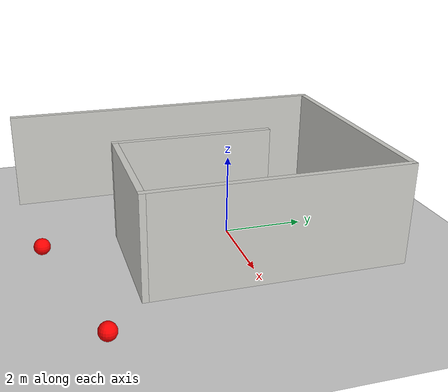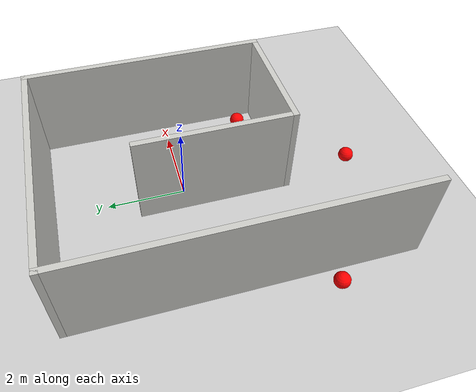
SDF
<sdf version="1.6">
 <world name="default">
  <model name="ground_plane">
   <static>1</static>
   <link name="link">
    <collision name="collision">
     <geometry><plane><normal>0 0 1</normal><size>100 100</size></plane></geometry>
     <surface><friction><ode><mu>100</mu><mu2>50</mu2></ode></friction></surface>
    </collision>
    <visual name="visual">
     <cast_shadows>0</cast_shadows>
     <geometry><plane><normal>0 0 1</normal><size>100 100</size></plane></geometry>
     <material>
      <script><uri>file://media/materials/scripts/gazebo.material</uri><name>Gazebo/Grey</name></script>
     </material>
    </visual>
   </link>
  </model>
  <model name="redball_0">
   <link name="link">
    <pose>0 0 0.2 0 -0 0</pose>
    <inertial>
     <mass>1</mass>
     <inertia><ixx>0.1</ixx><ixy>0</ixy><ixz>0</ixz><iyy>0.1</iyy><iyz>0</iyz><izz>0.1</izz></inertia>
    </inertial>
    <visual name="visual">
     <geometry><sphere><radius>0.2</radius></sphere></geometry>
     <material>
      <script><name>Gazebo/Grey</name><uri>file://media/materials/scripts/gazebo.material</uri></script>
      <ambient>1 0 0 1</ambient>
      <diffuse>1 0 0 1</diffuse>
      <specular>1 0 0 1</specular>
      <emissive>0 0 0 1</emissive>
      <shader type="vertex"><normal_map>__default__</normal_map></shader>
     </material>
    </visual>
    <collision name="collision">
     <geometry><sphere><radius>0.2</radius></sphere></geometry>
     <surface>
      <friction>
       <ode><mu>1</mu><mu2>1</mu2><fdir1>0 0 0</fdir1><slip1>0</slip1><slip2>0</slip2></ode>
       <torsional>
        <coefficient>1</coefficient>
        <patch_radius>0</patch_radius>
        <surface_radius>0</surface_radius>
        <use_patch_radius>1</use_patch_radius>
        <ode><slip>0</slip></ode>
       </torsional>
      </friction>
      <bounce><restitution_coefficient>0</restitution_coefficient><threshold>1e+06</threshold></bounce>
      <contact>
       <collide_without_contact>0</collide_without_contact>
       <collide_without_contact_bitmask>1</collide_without_contact_bitmask>
       <collide_bitmask>1</collide_bitmask>
       <ode>
        <soft_cfm>0</soft_cfm>
        <soft_erp>0.2</soft_erp>
        <kp>1e+13</kp>
        <kd>1</kd>
        <max_vel>0.01</max_vel>
        <min_depth>0</min_depth>
       </ode>
       <bullet>
        <split_impulse>1</split_impulse>
        <split_impulse_penetration_threshold>-0.01</split_impulse_penetration_threshold>
        <soft_cfm>0</soft_cfm>
        <soft_erp>0.2</soft_erp>
        <kp>1e+13</kp>
        <kd>1</kd>
       </bullet>
      </contact>
     </surface>
    </collision>
   </link>
   <static>0</static>
   <pose>-0.044672 -4.61825 7.4e-05 -0.02714 0 0</pose>
  </model>
  <model name="redball_3">
   <link name="link">
    <pose>0 0 0.2 0 -0 0</pose>
    <inertial>
     <mass>1</mass>
     <inertia><ixx>0.1</ixx><ixy>0</ixy><ixz>0</ixz><iyy>0.1</iyy><iyz>0</iyz><izz>0.1</izz></inertia>
    </inertial>
    <visual name="visual">
     <geometry><sphere><radius>0.2</radius></sphere></geometry>
     <material>
      <script><name>Gazebo/Grey</name><uri>file://media/materials/scripts/gazebo.material</uri></script>
      <ambient>1 0 0 1</ambient>
      <diffuse>1 0 0 1</diffuse>
      <specular>1 0 0 1</specular>
      <emissive>0 0 0 1</emissive>
      <shader type="vertex"><normal_map>__default__</normal_map></shader>
     </material>
    </visual>
    <collision name="collision">
     <geometry><sphere><radius>0.2</radius></sphere></geometry>
     <surface>
      <friction>
       <ode><mu>1</mu><mu2>1</mu2><fdir1>0 0 0</fdir1><slip1>0</slip1><slip2>0</slip2></ode>
       <torsional>
        <coefficient>1</coefficient>
        <patch_radius>0</patch_radius>
        <surface_radius>0</surface_radius>
        <use_patch_radius>1</use_patch_radius>
        <ode><slip>0</slip></ode>
       </torsional>
      </friction>
      <bounce><restitution_coefficient>0</restitution_coefficient><threshold>1e+06</threshold></bounce>
      <contact>
       <collide_without_contact>0</collide_without_contact>
       <collide_without_contact_bitmask>1</collide_without_contact_bitmask>
       <collide_bitmask>1</collide_bitmask>
       <ode>
        <soft_cfm>0</soft_cfm>
        <soft_erp>0.2</soft_erp>
        <kp>1e+13</kp>
        <kd>1</kd>
        <max_vel>0.01</max_vel>
        <min_depth>0</min_depth>
       </ode>
       <bullet>
        <split_impulse>1</split_impulse>
        <split_impulse_penetration_threshold>-0.01</split_impulse_penetration_threshold>
        <soft_cfm>0</soft_cfm>
        <soft_erp>0.2</soft_erp>
        <kp>1e+13</kp>
        <kd>1</kd>
       </bullet>
      </contact>
     </surface>
    </collision>
   </link>
   <static>0</static>
   <pose>-1.92733 -1.98789 0 0 -0 0</pose>
  </model>
  <model name="redball_2_clone_5">
   <link name="link">
    <pose>0 0 0.2 0 -0 0</pose>
    <inertial>
     <mass>1</mass>
     <inertia><ixx>0.1</ixx><ixy>0</ixy><ixz>0</ixz><iyy>0.1</iyy><iyz>0</iyz><izz>0.1</izz></inertia>
    </inertial>
    <visual name="visual">
     <geometry><sphere><radius>0.2</radius></sphere></geometry>
     <material>
      <script><name>Gazebo/Grey</name><uri>file://media/materials/scripts/gazebo.material</uri></script>
      <ambient>1 0 0 1</ambient>
      <diffuse>1 0 0 1</diffuse>
      <specular>1 0 0 1</specular>
      <emissive>0 0 0 1</emissive>
      <shader type="vertex"><normal_map>__default__</normal_map></shader>
     </material>
    </visual>
    <collision name="collision">
     <geometry><sphere><radius>0.2</radius></sphere></geometry>
     <surface>
      <friction>
       <ode><mu>1</mu><mu2>1</mu2><fdir1>0 0 0</fdir1><slip1>0</slip1><slip2>0</slip2></ode>
       <torsional>
        <coefficient>1</coefficient>
        <patch_radius>0</patch_radius>
        <surface_radius>0</surface_radius>
        <use_patch_radius>1</use_patch_radius>
        <ode><slip>0</slip></ode>
       </torsional>
      </friction>
      <bounce><restitution_coefficient>0</restitution_coefficient><threshold>1e+06</threshold></bounce>
      <contact>
       <collide_without_contact>0</collide_without_contact>
       <collide_without_contact_bitmask>1</collide_without_contact_bitmask>
       <collide_bitmask>1</collide_bitmask>
       <ode>
        <soft_cfm>0</soft_cfm>
        <soft_erp>0.2</soft_erp>
        <kp>1e+13</kp>
        <kd>1</kd>
        <max_vel>0.01</max_vel>
        <min_depth>0</min_depth>
       </ode>
       <bullet>
        <split_impulse>1</split_impulse>
        <split_impulse_penetration_threshold>-0.01</split_impulse_penetration_threshold>
        <soft_cfm>0</soft_cfm>
        <soft_erp>0.2</soft_erp>
        <kp>1e+13</kp>
        <kd>1</kd>
       </bullet>
      </contact>
     </surface>
    </collision>
   </link>
   <static>0</static>
   <pose>-3.68777 -2.81908 0 0 -0 0</pose>
  </model>
  <model name="Untitled4">
   <pose>-0.277886 -0.769655 0 0 -0 0</pose>
   <link name="Wall_21">
    <collision name="Wall_21_Collision">
     <geometry><box><size>8.5 0.15 2.5</size></box></geometry>
     <pose>0 0 1.25 0 -0 0</pose>
    </collision>
    <visual name="Wall_21_Visual">
     <pose>0 0 1.25 0 -0 0</pose>
     <geometry><box><size>8.5 0.15 2.5</size></box></geometry>
     <material>
      <script><uri>file://media/materials/scripts/gazebo.material</uri><name>Gazebo/CeilingTiled</name></script>
      <ambient>1 1 1 1</ambient>
     </material>
     <meta><layer>0</layer></meta>
    </visual>
    <pose>-2.925 0 0 0 0 -1.5708</pose>
   </link>
   <link name="Wall_23">
    <collision name="Wall_23_Collision">
     <geometry><box><size>6 0.15 2.5</size></box></geometry>
     <pose>0 0 1.25 0 -0 0</pose>
    </collision>
    <visual name="Wall_23_Visual">
     <pose>0 0 1.25 0 -0 0</pose>
     <geometry><box><size>6 0.15 2.5</size></box></geometry>
     <material>
      <script><uri>file://media/materials/scripts/gazebo.material</uri><name>Gazebo/CeilingTiled</name></script>
      <ambient>1 1 1 1</ambient>
     </material>
     <meta><layer>0</layer></meta>
    </visual>
    <pose>0 4.175 0 0 -0 0</pose>
   </link>
   <link name="Wall_24">
    <collision name="Wall_24_Collision">
     <geometry><box><size>6.25 0.15 2.5</size></box></geometry>
     <pose>0 0 1.25 0 -0 0</pose>
    </collision>
    <visual name="Wall_24_Visual">
     <pose>0 0 1.25 0 -0 0</pose>
     <geometry><box><size>6.25 0.15 2.5</size></box></geometry>
     <material>
      <script><uri>file://media/materials/scripts/gazebo.material</uri><name>Gazebo/CeilingTiled</name></script>
      <ambient>1 1 1 1</ambient>
     </material>
     <meta><layer>0</layer></meta>
    </visual>
    <pose>2.925 1.125 0 0 0 -1.5708</pose>
   </link>
   <link name="Wall_29">
    <collision name="Wall_29_Collision">
     <geometry><box><size>3.25 0.15 2.5</size></box></geometry>
     <pose>0 0 1.25 0 -0 0</pose>
    </collision>
    <visual name="Wall_29_Visual">
     <pose>0 0 1.25 0 -0 0</pose>
     <geometry><box><size>3.25 0.15 2.5</size></box></geometry>
     <material>
      <script><uri>file://media/materials/scripts/gazebo.material</uri><name>Gazebo/CeilingTiled</name></script>
      <ambient>1 1 1 1</ambient>
     </material>
     <meta><layer>0</layer></meta>
    </visual>
    <pose>1.375 -1.925 0 0 -0 3.14159</pose>
   </link>
   <link name="Wall_30">
    <collision name="Wall_30_Collision">
     <geometry><box><size>4 0.15 2.5</size></box></geometry>
     <pose>0 0 1.25 0 -0 0</pose>
    </collision>
    <visual name="Wall_30_Visual">
     <pose>0 0 1.25 0 -0 0</pose>
     <geometry><box><size>4 0.15 2.5</size></box></geometry>
     <material>
      <script><uri>file://media/materials/scripts/gazebo.material</uri><name>Gazebo/CeilingTiled</name></script>
      <ambient>1 1 1 1</ambient>
     </material>
     <meta><layer>0</layer></meta>
    </visual>
    <pose>-0.175 0 0 0 -0 1.5708</pose>
   </link>
   <static>1</static>
  </model>
  <model name="redball_0_clone">
   <link name="link">
    <pose>0 0 0.2 0 -0 0</pose>
    <inertial>
     <mass>1</mass>
     <inertia><ixx>0.1</ixx><ixy>0</ixy><ixz>0</ixz><iyy>0.1</iyy><iyz>0</iyz><izz>0.1</izz></inertia>
    </inertial>
    <visual name="visual">
     <geometry><sphere><radius>0.2</radius></sphere></geometry>
     <material>
      <script><name>Gazebo/Grey</name><uri>file://media/materials/scripts/gazebo.material</uri></script>
      <ambient>1 0 0 1</ambient>
      <diffuse>1 0 0 1</diffuse>
      <specular>1 0 0 1</specular>
      <emissive>0 0 0 1</emissive>
      <shader type="vertex"><normal_map>__default__</normal_map></shader>
     </material>
    </visual>
    <collision name="collision">
     <geometry><sphere><radius>0.2</radius></sphere></geometry>
     <surface>
      <friction>
       <ode><mu>1</mu><mu2>1</mu2><fdir1>0 0 0</fdir1><slip1>0</slip1><slip2>0</slip2></ode>
       <torsional>
        <coefficient>1</coefficient>
        <patch_radius>0</patch_radius>
        <surface_radius>0</surface_radius>
        <use_patch_radius>1</use_patch_radius>
        <ode><slip>0</slip></ode>
       </torsional>
      </friction>
      <bounce><restitution_coefficient>0</restitution_coefficient><threshold>1e+06</threshold></bounce>
      <contact>
       <collide_without_contact>0</collide_without_contact>
       <collide_without_contact_bitmask>1</collide_without_contact_bitmask>
       <collide_bitmask>1</collide_bitmask>
       <ode>
        <soft_cfm>0</soft_cfm>
        <soft_erp>0.2</soft_erp>
        <kp>1e+13</kp>
        <kd>1</kd>
        <max_vel>0.01</max_vel>
        <min_depth>0</min_depth>
       </ode>
       <bullet>
        <split_impulse>1</split_impulse>
        <split_impulse_penetration_threshold>-0.01</split_impulse_penetration_threshold>
        <soft_cfm>0</soft_cfm>
        <soft_erp>0.2</soft_erp>
        <kp>1e+13</kp>
        <kd>1</kd>
       </bullet>
      </contact>
     </surface>
    </collision>
   </link>
   <static>0</static>
   <pose>2.14651 -2.12896 7.4e-05 -0.02714 0 0</pose>
  </model>
  <model name="redball_0_clone_0">
   <link name="link">
    <pose>0 0 0.2 0 -0 0</pose>
    <inertial>
     <mass>1</mass>
     <inertia><ixx>0.1</ixx><ixy>0</ixy><ixz>0</ixz><iyy>0.1</iyy><iyz>0</iyz><izz>0.1</izz></inertia>
    </inertial>
    <visual name="visual">
     <geometry><sphere><radius>0.2</radius></sphere></geometry>
     <material>
      <script><name>Gazebo/Grey</name><uri>file://media/materials/scripts/gazebo.material</uri></script>
      <ambient>1 0 0 1</ambient>
      <diffuse>1 0 0 1</diffuse>
      <specular>1 0 0 1</specular>
      <emissive>0 0 0 1</emissive>
      <shader type="vertex"><normal_map>__default__</normal_map></shader>
     </material>
    </visual>
    <collision name="collision">
     <geometry><sphere><radius>0.2</radius></sphere></geometry>
     <surface>
      <friction>
       <ode><mu>1</mu><mu2>1</mu2><fdir1>0 0 0</fdir1><slip1>0</slip1><slip2>0</slip2></ode>
       <torsional>
        <coefficient>1</coefficient>
        <patch_radius>0</patch_radius>
        <surface_radius>0</surface_radius>
        <use_patch_radius>1</use_patch_radius>
        <ode><slip>0</slip></ode>
       </torsional>
      </friction>
      <bounce><restitution_coefficient>0</restitution_coefficient><threshold>1e+06</threshold></bounce>
      <contact>
       <collide_without_contact>0</collide_without_contact>
       <collide_without_contact_bitmask>1</collide_without_contact_bitmask>
       <collide_bitmask>1</collide_bitmask>
       <ode>
        <soft_cfm>0</soft_cfm>
        <soft_erp>0.2</soft_erp>
        <kp>1e+13</kp>
        <kd>1</kd>
        <max_vel>0.01</max_vel>
        <min_depth>0</min_depth>
       </ode>
       <bullet>
        <split_impulse>1</split_impulse>
        <split_impulse_penetration_threshold>-0.01</split_impulse_penetration_threshold>
        <soft_cfm>0</soft_cfm>
        <soft_erp>0.2</soft_erp>
        <kp>1e+13</kp>
        <kd>1</kd>
       </bullet>
      </contact>
     </surface>
    </collision>
   </link>
   <static>0</static>
   <pose>0.106404 -2.18033 7.4e-05 -0.02714 0 0</pose>
  </model>
  <model name="redball_0_clone_4">
   <link name="link">
    <pose>0 0 0.2 0 -0 0</pose>
    <inertial>
     <mass>1</mass>
     <inertia><ixx>0.1</ixx><ixy>0</ixy><ixz>0</ixz><iyy>0.1</iyy><iyz>0</iyz><izz>0.1</izz></inertia>
    </inertial>
    <visual name="visual">
     <geometry><sphere><radius>0.2</radius></sphere></geometry>
     <material>
      <script><name>Gazebo/Grey</name><uri>file://media/materials/scripts/gazebo.material</uri></script>
      <ambient>1 0 0 1</ambient>
      <diffuse>1 0 0 1</diffuse>
      <specular>1 0 0 1</specular>
      <emissive>0 0 0 1</emissive>
      <shader type="vertex"><normal_map>__default__</normal_map></shader>
     </material>
    </visual>
    <collision name="collision">
     <geometry><sphere><radius>0.2</radius></sphere></geometry>
     <surface>
      <friction>
       <ode><mu>1</mu><mu2>1</mu2><fdir1>0 0 0</fdir1><slip1>0</slip1><slip2>0</slip2></ode>
       <torsional>
        <coefficient>1</coefficient>
        <patch_radius>0</patch_radius>
        <surface_radius>0</surface_radius>
        <use_patch_radius>1</use_patch_radius>
        <ode><slip>0</slip></ode>
       </torsional>
      </friction>
      <bounce><restitution_coefficient>0</restitution_coefficient><threshold>1e+06</threshold></bounce>
      <contact>
       <collide_without_contact>0</collide_without_contact>
       <collide_without_contact_bitmask>1</collide_without_contact_bitmask>
       <collide_bitmask>1</collide_bitmask>
       <ode>
        <soft_cfm>0</soft_cfm>
        <soft_erp>0.2</soft_erp>
        <kp>1e+13</kp>
        <kd>1</kd>
        <max_vel>0.01</max_vel>
        <min_depth>0</min_depth>
       </ode>
       <bullet>
        <split_impulse>1</split_impulse>
        <split_impulse_penetration_threshold>-0.01</split_impulse_penetration_threshold>
        <soft_cfm>0</soft_cfm>
        <soft_erp>0.2</soft_erp>
        <kp>1e+13</kp>
        <kd>1</kd>
       </bullet>
      </contact>
     </surface>
    </collision>
   </link>
   <static>0</static>
   <pose>3.80009 -3.66236 7.4e-05 -0.02714 0 0</pose>
  </model>
 </world>
</sdf>
